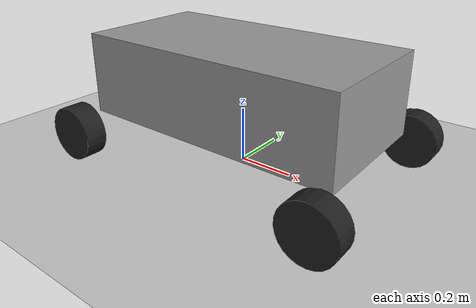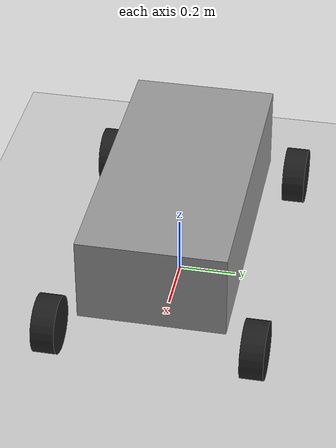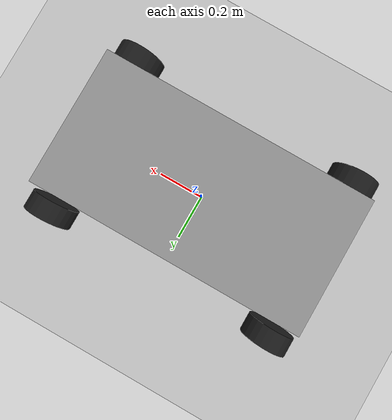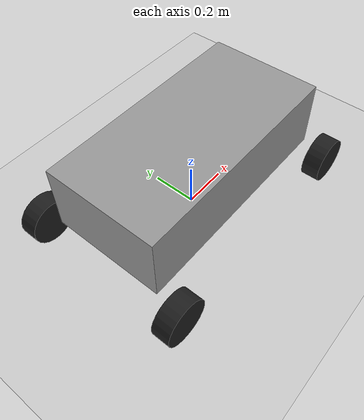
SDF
<?xml version="1.0" ?>
<sdf version="1.5">
  <world name="default">
    <!-- A global light source -->
    <include>
      <uri>model://sun</uri>
    </include>

    <!-- A ground plane -->
    <include>
      <uri>model://ground_plane</uri>
    </include>

    <!-- A testing model that includes the Velodyne sensor model -->
    <model name="teapot0">
      <include>
        <uri>model://teapot</uri>
      </include>

      <!-- Attach the plugin to this model -->
      <plugin name="teapot_control" filename="libcar_control_plugin.so"/>
    </model>

  </world>
</sdf>

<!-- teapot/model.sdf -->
<sdf version="1.5">
  <model name="teapot">
    <link name="chassis">
      <pose>0 0 0.30000000000000004  0 0 0</pose>
      <inertial>
        <pose>0.1 0 0  0 0 0</pose>
        <mass>10</mass>
        <inertia>
          <ixx>0.2833333333333333</ixx>
          <iyy>0.9083333333333334</iyy>
          <izz>1.0416666666666667</izz>
          <ixy>0</ixy>
          <ixz>0</ixz>
          <iyz>0</iyz>
        </inertia>
      </inertial>
      <collision name="collision">
        <geometry>
          <box>
            <size>1.0 0.5 0.3</size>
          </box>
        </geometry>
      </collision>
      <visual name="visual">
        <geometry>
          <box>
            <size>1.0 0.5 0.3</size>
          </box>
        </geometry>
        <material>
          <script>
            <uri>file://media/materials/scripts/gazebo.material</uri>
            <name>Gazebo/Grey</name>
          </script>
        </material>
      </visual>
    </link>

    <link name="wheel_fl">
      <pose>
        0.5 0.348 0.1
        -1.5707963267948966 -0.08726646259971647 0
      </pose>
      <inertial>
        <mass>0.5</mass>
        <inertia>
          <ixx>0.001516666666666667</ixx>
          <iyy>0.001516666666666667</iyy>
          <izz>0.0025000000000000005</izz>
          <ixy>0</ixy>
          <ixz>0</ixz>
          <iyz>0</iyz>
        </inertia>
      </inertial>
      <collision name="collision">
        <geometry>
          <cylinder>
            <radius>0.1</radius>
            <length>0.08</length>
          </cylinder>
        </geometry>
      </collision>
      <visual name="visual">
        <geometry>
          <cylinder>
            <radius>0.1</radius>
            <length>0.08</length>
          </cylinder>
        </geometry>
        <material>
          <script>
            <uri>file://media/materials/scripts/gazebo.material</uri>
            <name>Gazebo/Black</name>
          </script>
        </material>
      </visual>
    </link>

    <joint name="wheel_fl_steer" type="universal">
      <parent>chassis</parent>
      <child>wheel_fl</child>
      <axis>
        <xyz>0 -1 0</xyz>
        <limit>
          <lower>-1.3089969389957472</lower>
          <upper>1.3089969389957472</upper>
        </limit>
      </axis>
      <axis2>
        <xyz>0 0 1</xyz>
      </axis2>
    </joint>

    <link name="wheel_fr">
      <pose>
        0.5 -0.348 0.1
        -1.5707963267948966 -0.08726646259971647 0
      </pose>
      <inertial>
        <mass>0.5</mass>
        <inertia>
          <ixx>0.001516666666666667</ixx>
          <iyy>0.001516666666666667</iyy>
          <izz>0.0025000000000000005</izz>
          <ixy>0</ixy>
          <ixz>0</ixz>
          <iyz>0</iyz>
        </inertia>
      </inertial>
      <collision name="collision">
        <geometry>
          <cylinder>
            <radius>0.1</radius>
            <length>0.08</length>
          </cylinder>
        </geometry>
      </collision>
      <visual name="visual">
        <geometry>
          <cylinder>
            <radius>0.1</radius>
            <length>0.08</length>
          </cylinder>
        </geometry>
        <material>
          <script>
            <uri>file://media/materials/scripts/gazebo.material</uri>
            <name>Gazebo/Black</name>
          </script>
        </material>
      </visual>
    </link>

    <joint name="wheel_fr_steer" type="universal">
      <parent>chassis</parent>
      <child>wheel_fr</child>
      <axis>
        <xyz>0 -1 0</xyz>
        <limit>
          <lower>-1.3089969389957472</lower>
          <upper>1.3089969389957472</upper>
        </limit>
      </axis>
      <axis2>
        <xyz>0 0 1</xyz>
      </axis2>
    </joint>

    <link name="wheel_rl">
      <pose>-0.5 0.348 0.1  -1.5707963267948966 0 0</pose>
      <inertial>
        <mass>0.5</mass>
        <inertia>
          <ixx>0.001516666666666667</ixx>
          <iyy>0.001516666666666667</iyy>
          <izz>0.0025000000000000005</izz>
          <ixy>0</ixy>
          <ixz>0</ixz>
          <iyz>0</iyz>
        </inertia>
      </inertial>
      <collision name="collision">
        <geometry>
          <cylinder>
            <radius>0.1</radius>
            <length>0.08</length>
          </cylinder>
        </geometry>
      </collision>
      <visual name="visual">
        <geometry>
          <cylinder>
            <radius>0.1</radius>
            <length>0.08</length>
          </cylinder>
        </geometry>
        <material>
          <script>
            <uri>file://media/materials/scripts/gazebo.material</uri>
            <name>Gazebo/Black</name>
          </script>
        </material>
      </visual>
    </link>
    <joint name="wheel_rl_drive" type="revolute">
      <parent>chassis</parent>
      <child>wheel_rl</child>
      <axis>
        <xyz>0 0 1</xyz>
      </axis>
    </joint>

    <link name="wheel_rr">
      <pose>-0.5 -0.348 0.1  -1.5707963267948966 0 0</pose>
      <inertial>
        <mass>0.5</mass>
        <inertia>
          <ixx>0.001516666666666667</ixx>
          <iyy>0.001516666666666667</iyy>
          <izz>0.0025000000000000005</izz>
          <ixy>0</ixy>
          <ixz>0</ixz>
          <iyz>0</iyz>
        </inertia>
      </inertial>
      <collision name="collision">
        <geometry>
          <cylinder>
            <radius>0.1</radius>
            <length>0.08</length>
          </cylinder>
        </geometry>
      </collision>
      <visual name="visual">
        <geometry>
          <cylinder>
            <radius>0.1</radius>
            <length>0.08</length>
          </cylinder>
        </geometry>
        <material>
          <script>
            <uri>file://media/materials/scripts/gazebo.material</uri>
            <name>Gazebo/Black</name>
          </script>
        </material>
      </visual>
    </link>
    <joint name="wheel_rr_drive" type="revolute">
      <parent>chassis</parent>
      <child>wheel_rr</child>
      <axis>
        <xyz>0 0 1</xyz>
      </axis>
    </joint>

  </model>
</sdf>
